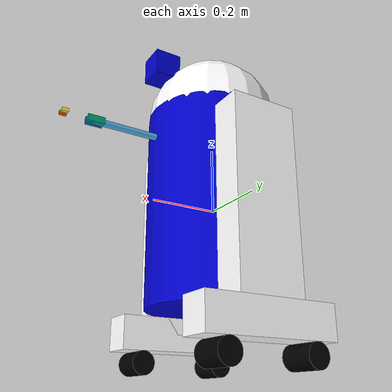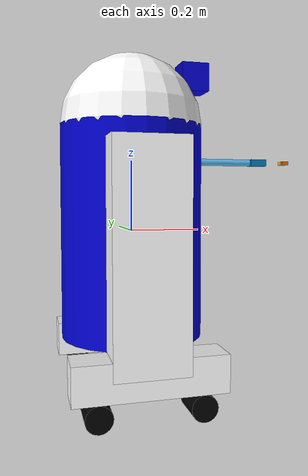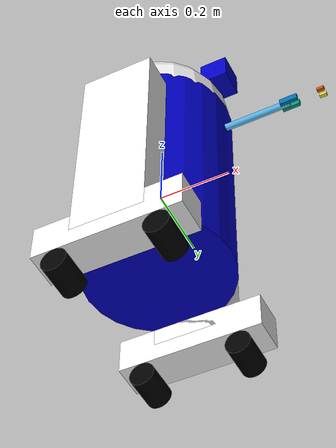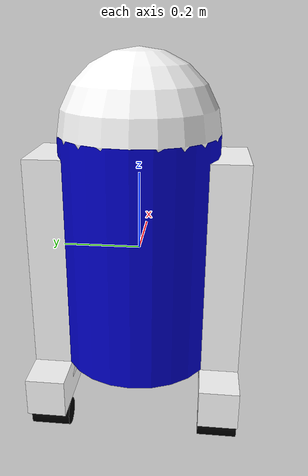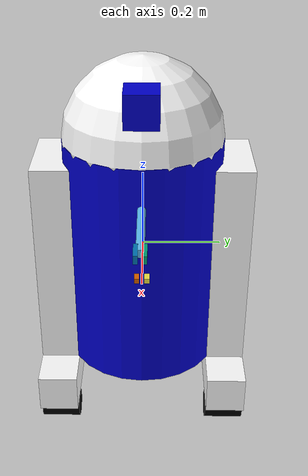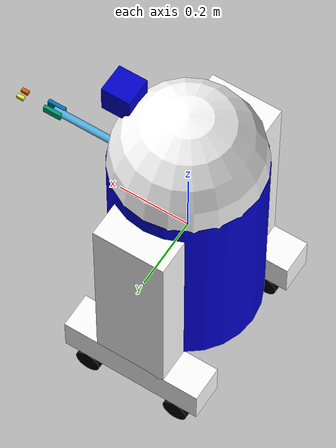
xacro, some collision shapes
<?xml version="1.0"?>
<robot name="visual" xmlns:xacro="http://www.ros.org/wiki/xacro">

  <!-- Materials -->
  <material name="blue">
    <color rgba="0 0 0.8 1"/>
  </material>
  <material name="black">
    <color rgba="0 0 0 1"/>
  </material>
  <material name="white">
    <color rgba="1 1 1 1"/>
  </material>

  <!-- Parameters -->
  <xacro:property name="base_length" value="0.6" />
  <xacro:property name="base_radius" value="0.2" />
  <xacro:property name="base_mass" value="10.0" />

  <xacro:property name="leg_length" value="0.6" />
  <xacro:property name="leg_width" value="0.1" />
  <xacro:property name="leg_height" value="0.2" />
  <xacro:property name="leg_mass" value="2.0" />

  <xacro:property name="wheel_radius" value="0.035" />
  <xacro:property name="wheel_length" value="0.1" />
  <xacro:property name="wheel_mass" value="0.5" />

  <xacro:property name="leg_offset_y" value="0.22" />
  <xacro:property name="leg_offset_z" value="0.25" />

  <!-- Macro for cylinder link -->
  <xacro:macro name="cylinder_link" params="name length radius mass ixx ixy ixz iyy iyz izz material">
    <link name="${name}">
      <visual>
        <geometry>
          <cylinder length="${length}" radius="${radius}"/>
        </geometry>
        <material name="${material}"/>
      </visual>
      <collision>
        <geometry>
          <cylinder length="${length}" radius="${radius}"/>
        </geometry>
      </collision>
      <inertial>
        <mass value="${mass}"/>
        <inertia ixx="${ixx}" ixy="${ixy}" ixz="${ixz}" iyy="${iyy}" iyz="${iyz}" izz="${izz}"/>
      </inertial>
    </link>
  </xacro:macro>

  <!-- Macro for box link with origin -->
  <xacro:macro name="box_link_with_origin" params="name size_x size_y size_z mass ixx ixy ixz iyy iyz izz material origin_rpy origin_xyz">
    <link name="${name}">
      <visual>
        <geometry>
          <box size="${size_x} ${size_y} ${size_z}"/>
        </geometry>
        <origin rpy="${origin_rpy}" xyz="${origin_xyz}"/>
        <material name="${material}"/>
      </visual>
      <collision>
        <geometry>
          <box size="${size_x} ${size_y} ${size_z}"/>
        </geometry>
        <origin rpy="${origin_rpy}" xyz="${origin_xyz}"/>
      </collision>
      <inertial>
        <mass value="${mass}"/>
        <origin rpy="${origin_rpy}" xyz="${origin_xyz}"/>
        <inertia ixx="${ixx}" ixy="${ixy}" ixz="${ixz}" iyy="${iyy}" iyz="${iyz}" izz="${izz}"/>
      </inertial>
    </link>
  </xacro:macro>

  <!-- Macro for simple box link without origin -->
  <xacro:macro name="box_link" params="name size_x size_y size_z mass ixx ixy ixz iyy iyz izz material">
    <link name="${name}">
      <visual>
        <geometry>
          <box size="${size_x} ${size_y} ${size_z}"/>
        </geometry>
        <material name="${material}"/>
      </visual>
      <collision>
        <geometry>
          <box size="${size_x} ${size_y} ${size_z}"/>
        </geometry>
      </collision>
      <inertial>
        <mass value="${mass}"/>
        <inertia ixx="${ixx}" ixy="${ixy}" ixz="${ixz}" iyy="${iyy}" iyz="${iyz}" izz="${izz}"/>
      </inertial>
    </link>
  </xacro:macro>

  <!-- Macro for wheel -->
  <xacro:macro name="wheel" params="name parent x_pos">
    <link name="${name}">
      <visual>
        <origin rpy="1.57075 0 0" xyz="0 0 0"/>
        <geometry>
          <cylinder length="${wheel_length}" radius="${wheel_radius}"/>
        </geometry>
        <material name="black"/>
      </visual>
      <collision>
        <origin rpy="1.57075 0 0" xyz="0 0 0"/>
        <geometry>
          <cylinder length="${wheel_length}" radius="${wheel_radius}"/>
        </geometry>
      </collision>
      <inertial>
        <mass value="${wheel_mass}"/>
        <origin rpy="1.57075 0 0" xyz="0 0 0"/>
        <inertia ixx="0.0002" ixy="0.0" ixz="0.0" iyy="0.0004" iyz="0.0" izz="0.0002"/>
      </inertial>
    </link>

    <joint name="${name}_joint" type="continuous">
      <axis rpy="0 0 0" xyz="0 1 0"/>
      <parent link="${parent}"/>
      <child link="${name}"/>
      <origin rpy="0 0 0" xyz="${x_pos} 0 -0.085"/>
    </joint>
  </xacro:macro>

  <!-- Base Link -->
  <xacro:cylinder_link
    name="base_link"
    length="${base_length}"
    radius="${base_radius}"
    mass="${base_mass}"
    ixx="0.15" ixy="0.0" ixz="0.0"
    iyy="0.15" iyz="0.0"
    izz="0.25"
    material="blue"/>

  <!-- Legs Assembly Macro -->
  <xacro:macro name="leg_assembly" params="side y_sign">
    <!-- Leg -->
    <xacro:box_link_with_origin
      name="${side}_leg"
      size_x="${leg_length}" size_y="${leg_width}" size_z="${leg_height}"
      mass="${leg_mass}"
      ixx="0.02" ixy="0.0" ixz="0.0"
      iyy="0.018" iyz="0.0"
      izz="0.022"
      material="white"
      origin_rpy="0 1.57075 0"
      origin_xyz="0 0 -0.3"/>

    <joint name="base_to_${side}_leg" type="fixed">
      <parent link="base_link"/>
      <child link="${side}_leg"/>
      <origin xyz="0 ${y_sign * leg_offset_y} ${leg_offset_z}"/>
    </joint>

    <!-- Base -->
    <xacro:box_link
      name="${side}_base"
      size_x="0.4" size_y="0.1" size_z="0.1"
      mass="1.0"
      ixx="0.0085" ixy="0.0" ixz="0.0"
      iyy="0.0085" iyz="0.0"
      izz="0.0135"
      material="white"/>

    <joint name="${side}_base_joint" type="fixed">
      <parent link="${side}_leg"/>
      <child link="${side}_base"/>
      <origin xyz="0 0 -0.6"/>
    </joint>

    <!-- Wheels -->
    <xacro:wheel name="${side}_front_wheel" parent="${side}_base" x_pos="0.133333333333"/>
    <xacro:wheel name="${side}_back_wheel" parent="${side}_base" x_pos="-0.133333333333"/>
  </xacro:macro>

  <!-- Create legs -->
  <xacro:leg_assembly side="right" y_sign="-1"/>
  <xacro:leg_assembly side="left" y_sign="1"/>

  <!-- Gripper Pole -->
  <link name="gripper_pole">
    <visual>
      <geometry>
        <cylinder length="0.2" radius="0.01"/>
      </geometry>
      <origin rpy="0 1.57075 0" xyz="0.1 0 0"/>
    </visual>
    <collision>
      <geometry>
        <cylinder length="0.2" radius="0.01"/>
      </geometry>
      <origin rpy="0 1.57075 0" xyz="0.1 0 0"/>
    </collision>
    <inertial>
      <mass value="0.1"/>
      <origin rpy="0 1.57075 0" xyz="0.1 0 0"/>
      <inertia ixx="0.00003" ixy="0.0" ixz="0.0" iyy="0.00003" iyz="0.0" izz="0.00001"/>
    </inertial>
  </link>

  <joint name="gripper_extension" type="prismatic">
    <parent link="base_link"/>
    <child link="gripper_pole"/>
    <limit effort="1000.0" lower="-0.38" upper="0" velocity="0.5"/>
    <origin rpy="0 0 0" xyz="0.19 0 0.2"/>
  </joint>

  <!-- Gripper Fingers -->
  <!-- Left Gripper -->
  <link name="left_gripper">
    <visual>
      <origin rpy="0.0 0 0" xyz="0 0 0"/>
      <geometry>
        <mesh filename="package://urdf_tutorial/meshes/l_finger.dae"/>
      </geometry>
    </visual>
    <collision>
      <origin rpy="0.0 0 0" xyz="0 0 0"/>
      <geometry>
        <box size="0.05 0.01 0.02"/>
      </geometry>
    </collision>
    <inertial>
      <mass value="0.1"/>
      <inertia ixx="0.00001" ixy="0.0" ixz="0.0" iyy="0.00001" iyz="0.0" izz="0.00001"/>
    </inertial>
  </link>

  <joint name="left_gripper_joint" type="revolute">
    <axis xyz="0 0 1"/>
    <limit effort="1000.0" lower="0.0" upper="0.548" velocity="0.5"/>
    <origin rpy="0 0 0" xyz="0.2 0.01 0"/>
    <parent link="gripper_pole"/>
    <child link="left_gripper"/>
  </joint>

  <link name="left_tip">
    <visual>
      <origin rpy="0.0 0 0" xyz="0.09137 0.00495 0"/>
      <geometry>
        <mesh filename="package://urdf_tutorial/meshes/l_finger_tip.dae"/>
      </geometry>
    </visual>
    <collision>
      <origin rpy="0.0 0 0" xyz="0.09137 0.00495 0"/>
      <geometry>
        <box size="0.02 0.01 0.01"/>
      </geometry>
    </collision>
    <inertial>
      <mass value="0.05"/>
      <origin rpy="0.0 0 0" xyz="0.09137 0.00495 0"/>
      <inertia ixx="0.000002" ixy="0.0" ixz="0.0" iyy="0.000002" iyz="0.0" izz="0.000002"/>
    </inertial>
  </link>

  <joint name="left_tip_joint" type="fixed">
    <parent link="left_gripper"/>
    <child link="left_tip"/>
  </joint>

  <!-- Right Gripper -->
  <link name="right_gripper">
    <visual>
      <origin rpy="-3.1415 0 0" xyz="0 0 0"/>
      <geometry>
        <mesh filename="package://urdf_tutorial/meshes/l_finger.dae"/>
      </geometry>
    </visual>
    <collision>
      <origin rpy="-3.1415 0 0" xyz="0 0 0"/>
      <geometry>
        <box size="0.05 0.01 0.02"/>
      </geometry>
    </collision>
    <inertial>
      <mass value="0.1"/>
      <inertia ixx="0.00001" ixy="0.0" ixz="0.0" iyy="0.00001" iyz="0.0" izz="0.00001"/>
    </inertial>
  </link>

  <joint name="right_gripper_joint" type="revolute">
    <axis xyz="0 0 -1"/>
    <limit effort="1000.0" lower="0.0" upper="0.548" velocity="0.5"/>
    <origin rpy="0 0 0" xyz="0.2 -0.01 0"/>
    <parent link="gripper_pole"/>
    <child link="right_gripper"/>
  </joint>

  <link name="right_tip">
    <visual>
      <origin rpy="-3.1415 0 0" xyz="0.09137 0.00495 0"/>
      <geometry>
        <mesh filename="package://urdf_tutorial/meshes/l_finger_tip.dae"/>
      </geometry>
    </visual>
    <collision>
      <origin rpy="-3.1415 0 0" xyz="0.09137 0.00495 0"/>
      <geometry>
        <box size="0.02 0.01 0.01"/>
      </geometry>
    </collision>
    <inertial>
      <mass value="0.05"/>
      <origin rpy="-3.1415 0 0" xyz="0.09137 0.00495 0"/>
      <inertia ixx="0.000002" ixy="0.0" ixz="0.0" iyy="0.000002" iyz="0.0" izz="0.000002"/>
    </inertial>
  </link>

  <joint name="right_tip_joint" type="fixed">
    <parent link="right_gripper"/>
    <child link="right_tip"/>
  </joint>

  <!-- Head -->
  <link name="head">
    <visual>
      <geometry>
        <sphere radius="0.2"/>
      </geometry>
      <material name="white"/>
    </visual>
    <collision>
      <geometry>
        <sphere radius="0.2"/>
      </geometry>
    </collision>
    <inertial>
      <mass value="1.0"/>
      <inertia ixx="0.016" ixy="0.0" ixz="0.0" iyy="0.016" iyz="0.0" izz="0.016"/>
    </inertial>
  </link>

  <joint name="head_swivel" type="continuous">
    <parent link="base_link"/>
    <child link="head"/>
    <axis xyz="0 0 1"/>
    <origin xyz="0 0 0.3"/>
  </joint>

  <!-- Box -->
  <link name="box">
    <visual>
      <geometry>
        <box size="0.08 0.08 0.08"/>
      </geometry>
      <material name="blue"/>
    </visual>
    <collision>
      <geometry>
        <box size="0.08 0.08 0.08"/>
      </geometry>
    </collision>
    <inertial>
      <mass value="0.1"/>
      <inertia ixx="0.0002" ixy="0.0" ixz="0.0" iyy="0.0002" iyz="0.0" izz="0.0002"/>
    </inertial>
  </link>

  <joint name="tobox" type="fixed">
    <parent link="head"/>
    <child link="box"/>
    <origin xyz="0.1814 0 0.1414"/>
  </joint>

</robot>
